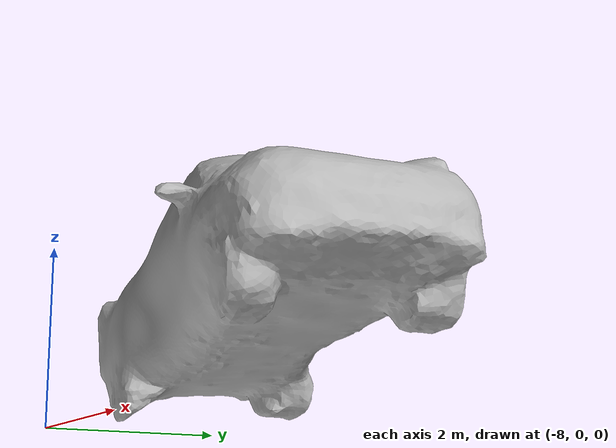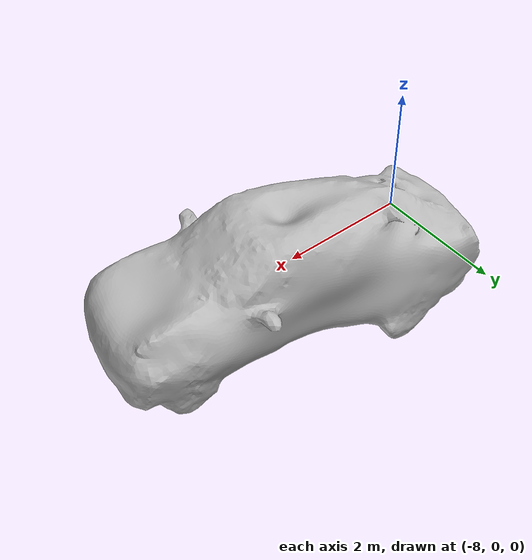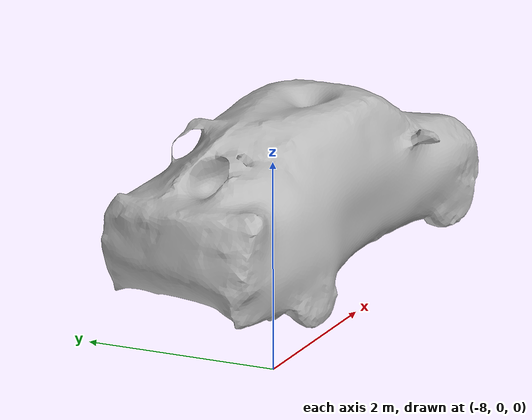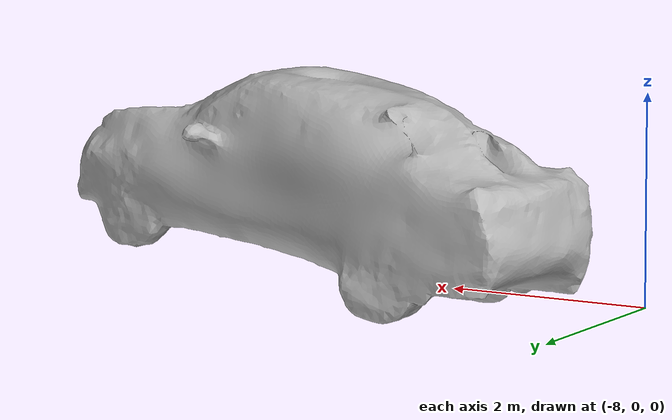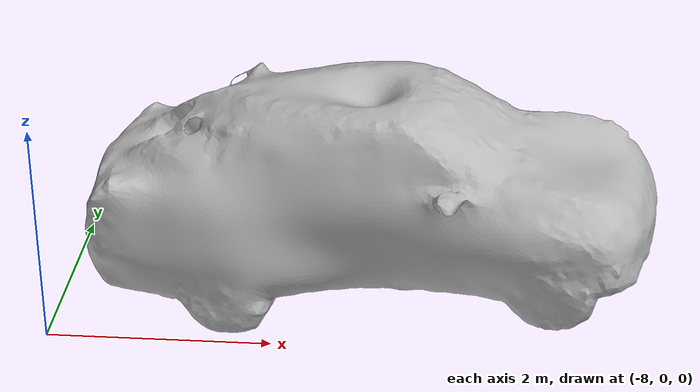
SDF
<?xml version='1.0'?>
<sdf version='1.7'>
  <model name='my_bot_bat'>
    <model name='kare-whitecar'>
      <static>1</static>
      <link name='roof_link'>
        <pose>0 0 1.5 0 -0 0</pose>
        <self_collide>1</self_collide>
        <enable_wind>1</enable_wind>
        <kinematic>1</kinematic>
      </link>
      <link name='link'>
        <collision name='collision'>
          <geometry>
            <mesh>
              <scale>5 5 5</scale>
              <uri>/home/amadeus/model_editor_models/kare-whitecar/meshes/kare-whitecar.obj</uri>
            </mesh>
          </geometry>
        </collision>
        <visual name='visual'>
          <geometry>
            <mesh>
              <scale>5 5 5</scale>
              <uri>/home/amadeus/model_editor_models/kare-whitecar/meshes/kare-whitecar.obj</uri>
            </mesh>
          </geometry>
        </visual>
      </link>
      <pose>-5.20216 0.961715 1.06554 1.40317 -0.021834 1.44097</pose>
    </model>
    <static>0</static>
    <allow_auto_disable>1</allow_auto_disable>
    <plugin name='diff_drive' filename='libgazebo_ros_diff_drive.so'>
      <left_joint>left_wheel_joint</left_joint>
      <right_joint>right_wheel_joint</right_joint>
      <wheel_separation>0.35</wheel_separation>
      <wheel_diameter>0.1</wheel_diameter>
      <max_wheel_torque>200</max_wheel_torque>
      <max_wheel_acceleration>50.0</max_wheel_acceleration>
      <odometry_frame>odom</odometry_frame>
      <robot_base_frame>base_link</robot_base_frame>
      <publish_odom>1</publish_odom>
      <publish_odom_tf>1</publish_odom_tf>
      <publish_wheel_tf>1</publish_wheel_tf>
    </plugin>
  </model>
</sdf>
